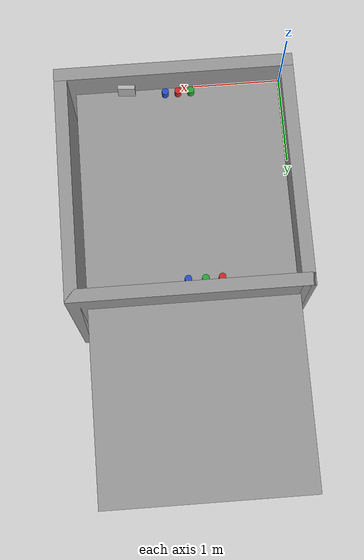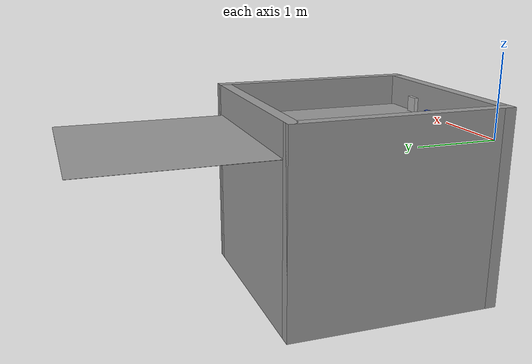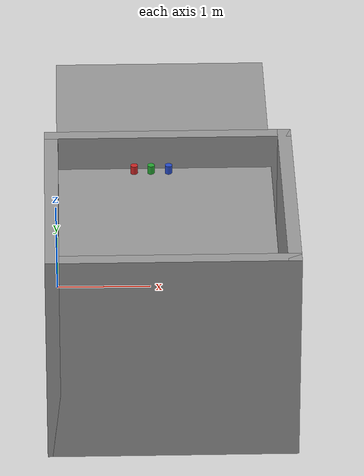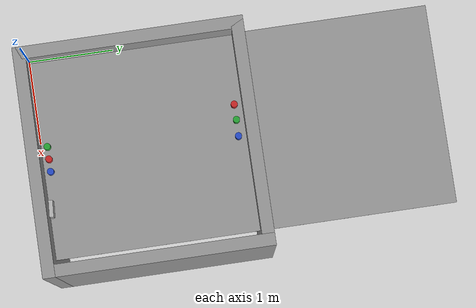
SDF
<sdf version="1.6">
 <world name="default">
  <light name="sun" type="directional">
   <pose>0 0 10 0 -0 0</pose>
   <diffuse>0.8 0.8 0.8 1</diffuse>
   <specular>0.2 0.2 0.2 1</specular>
   <attenuation>
    <range>1000</range>
    <constant>0.9</constant>
    <linear>0.01</linear>
    <quadratic>0.001</quadratic>
   </attenuation>
   <direction>-0.5 0.1 -0.9</direction>
  </light>
  <gravity>0 0 -9.8</gravity>
  <magnetic_field>6e-06 2.3e-05 -4.2e-05</magnetic_field>
  <atmosphere type="adiabatic"/>
  <physics name="default_physics" default="0" type="ode">
   <max_step_size>0.001</max_step_size>
   <real_time_factor>1</real_time_factor>
   <real_time_update_rate>1000</real_time_update_rate>
  </physics>
  <scene><ambient>0.4 0.4 0.4 1</ambient><background>0.7 0.7 0.7 1</background><shadows>1</shadows></scene>
  <audio><device>default</device></audio>
  <spherical_coordinates>
   <surface_model>EARTH_WGS84</surface_model>
   <latitude_deg>0</latitude_deg>
   <longitude_deg>0</longitude_deg>
   <elevation>0</elevation>
   <heading_deg>0</heading_deg>
  </spherical_coordinates>
  <model name="my_ground_plane">
   <pose>1.2 2.4 0 0 -0 0</pose>
   <static>1</static>
   <link name="link">
    <collision name="collision">
     <geometry><plane><normal>0 0 1</normal><size>2.4 4.8</size></plane></geometry>
     <surface><friction><ode><mu>100</mu><mu2>50</mu2></ode></friction></surface>
    </collision>
    <visual name="visual">
     <cast_shadows>0</cast_shadows>
     <geometry><plane><normal>0 0 1</normal><size>2.4 4.8</size></plane></geometry>
     <material>
      <script><uri>file://media/materials/scripts/gazebo.material</uri><name>Gazebo/Grey</name></script>
     </material>
    </visual>
   </link>
  </model>
  <model name="wall">
   <pose>1.24358 1.22026 -2.1 0 -0 0</pose>
   <link name="Wall_11">
    <collision name="Wall_11_Collision">
     <geometry><box><size>2.75 0.15 2.5</size></box></geometry>
     <pose>0 0 1.25 0 -0 0</pose>
    </collision>
    <visual name="Wall_11_Visual">
     <pose>0 0 1.25 0 -0 0</pose>
     <geometry><box><size>2.75 0.15 2.5</size></box></geometry>
     <material>
      <script><uri>file://media/materials/scripts/gazebo.material</uri><name>Gazebo/Grey</name></script>
      <ambient>1 1 1 1</ambient>
     </material>
     <meta><layer>0</layer></meta>
    </visual>
    <pose>0 1.3 0 0 -0 0</pose>
   </link>
   <link name="Wall_12">
    <collision name="Wall_12_Collision">
     <geometry><box><size>2.75 0.15 2.5</size></box></geometry>
     <pose>0 0 1.25 0 -0 0</pose>
    </collision>
    <visual name="Wall_12_Visual">
     <pose>0 0 1.25 0 -0 0</pose>
     <geometry><box><size>2.75 0.15 2.5</size></box></geometry>
     <material>
      <script><uri>file://media/materials/scripts/gazebo.material</uri><name>Gazebo/Grey</name></script>
      <ambient>1 1 1 1</ambient>
     </material>
     <meta><layer>0</layer></meta>
    </visual>
    <pose>1.3 0 0 0 -0 -1.5708</pose>
   </link>
   <link name="Wall_4">
    <collision name="Wall_4_Collision">
     <geometry><box><size>2.75 0.15 2.5</size></box></geometry>
     <pose>0 0 1.25 0 -0 0</pose>
    </collision>
    <visual name="Wall_4_Visual">
     <pose>0 0 1.25 0 -0 0</pose>
     <geometry><box><size>2.75 0.15 2.5</size></box></geometry>
     <material>
      <script><uri>file://media/materials/scripts/gazebo.material</uri><name>Gazebo/Grey</name></script>
      <ambient>1 1 1 1</ambient>
     </material>
     <meta><layer>0</layer></meta>
    </visual>
    <pose>0 -1.3 0 0 -0 3.14159</pose>
   </link>
   <link name="Wall_9">
    <collision name="Wall_9_Collision">
     <geometry><box><size>2.75 0.15 2.5</size></box></geometry>
     <pose>0 0 1.25 0 -0 0</pose>
    </collision>
    <visual name="Wall_9_Visual">
     <pose>0 0 1.25 0 -0 0</pose>
     <geometry><box><size>2.75 0.15 2.5</size></box></geometry>
     <material>
      <script><uri>file://media/materials/scripts/gazebo.material</uri><name>Gazebo/Grey</name></script>
      <ambient>1 1 1 1</ambient>
     </material>
     <meta><layer>0</layer></meta>
    </visual>
    <pose>-1.3 0 0 0 -0 1.5708</pose>
   </link>
   <static>1</static>
  </model>
  <model name="textured_shapes">
   <pose>1.8 0.035347 0.1 -1.36873 1.57079 -3.00299</pose>
   <link name="box">
    <collision name="collision"><geometry><box><size>0.2 0.2 0.05</size></box></geometry></collision>
    <visual name="visual">
     <geometry><box><size>0.2 0.2 0.05</size></box></geometry>
     <material>
      <script>
       <uri>model://textured_shapes/materials/scripts</uri>
       <uri>model://textured_shapes/materials/textures</uri>
       <name>TexturedShape/Squares</name>
      </script>
     </material>
    </visual>
    <inertial>
     <inertia><ixx>1</ixx><ixy>0</ixy><ixz>0</ixz><iyy>1</iyy><iyz>0</iyz><izz>1</izz></inertia>
     <mass>1</mass>
    </inertial>
   </link>
  </model>
  <model name="BlueButton">
   <link name="link_0">
    <inertial>
     <mass>1</mass>
     <inertia><ixx>0.145833</ixx><ixy>0</ixy><ixz>0</ixz><iyy>0.145833</iyy><iyz>0</iyz><izz>0.125</izz></inertia>
    </inertial>
    <visual name="visual">
     <geometry><cylinder><radius>0.04</radius><length>0.1</length></cylinder></geometry>
     <material>
      <lighting>1</lighting>
      <script><uri>file://media/materials/scripts/gazebo.material</uri><name>Gazebo/Blue</name></script>
      <shader type="vertex"><normal_map>__default__</normal_map></shader>
      <ambient>0 0 1 1</ambient>
      <diffuse>0 0 1 1</diffuse>
      <specular>0.1 0.1 0.1 1</specular>
      <emissive>0 0 0 1</emissive>
     </material>
    </visual>
    <collision name="collision">
     <geometry><cylinder><radius>0.04</radius><length>0.1</length></cylinder></geometry>
     <surface>
      <friction>
       <ode><mu>1</mu><mu2>1</mu2><fdir1>0 0 0</fdir1><slip1>0</slip1><slip2>0</slip2></ode>
       <torsional>
        <coefficient>1</coefficient>
        <patch_radius>0</patch_radius>
        <surface_radius>0</surface_radius>
        <use_patch_radius>1</use_patch_radius>
        <ode><slip>0</slip></ode>
       </torsional>
      </friction>
      <bounce><restitution_coefficient>0</restitution_coefficient><threshold>1e+06</threshold></bounce>
      <contact>
       <collide_without_contact>0</collide_without_contact>
       <collide_without_contact_bitmask>1</collide_without_contact_bitmask>
       <collide_bitmask>1</collide_bitmask>
       <ode>
        <soft_cfm>0</soft_cfm>
        <soft_erp>0.2</soft_erp>
        <kp>1e+13</kp>
        <kd>1</kd>
        <max_vel>0.01</max_vel>
        <min_depth>0</min_depth>
       </ode>
       <bullet>
        <split_impulse>1</split_impulse>
        <split_impulse_penetration_threshold>-0.01</split_impulse_penetration_threshold>
        <soft_cfm>0</soft_cfm>
        <soft_erp>0.2</soft_erp>
        <kp>1e+13</kp>
        <kd>1</kd>
       </bullet>
      </contact>
     </surface>
    </collision>
   </link>
   <static>0</static>
   <pose>1.25067 2.34834 0.049995 0 -0 5e-06</pose>
  </model>
  <model name="GreenButton">
   <link name="link_0">
    <inertial>
     <mass>1</mass>
     <inertia><ixx>0.145833</ixx><ixy>0</ixy><ixz>0</ixz><iyy>0.145833</iyy><iyz>0</iyz><izz>0.125</izz></inertia>
    </inertial>
    <visual name="visual">
     <geometry><cylinder><radius>0.04</radius><length>0.1</length></cylinder></geometry>
     <material>
      <lighting>1</lighting>
      <script><uri>file://media/materials/scripts/gazebo.material</uri><name>Gazebo/Green</name></script>
      <shader type="vertex"><normal_map>__default__</normal_map></shader>
      <ambient>0 1 0 1</ambient>
      <diffuse>0 1 0 1</diffuse>
      <specular>0.1 0.1 0.1 1</specular>
      <emissive>0 0 0 1</emissive>
     </material>
    </visual>
    <collision name="collision">
     <geometry><cylinder><radius>0.04</radius><length>0.1</length></cylinder></geometry>
     <surface>
      <friction>
       <ode><mu>1</mu><mu2>1</mu2><fdir1>0 0 0</fdir1><slip1>0</slip1><slip2>0</slip2></ode>
       <torsional>
        <coefficient>1</coefficient>
        <patch_radius>0</patch_radius>
        <surface_radius>0</surface_radius>
        <use_patch_radius>1</use_patch_radius>
        <ode><slip>0</slip></ode>
       </torsional>
      </friction>
      <bounce><restitution_coefficient>0</restitution_coefficient><threshold>1e+06</threshold></bounce>
      <contact>
       <collide_without_contact>0</collide_without_contact>
       <collide_without_contact_bitmask>1</collide_without_contact_bitmask>
       <collide_bitmask>1</collide_bitmask>
       <ode>
        <soft_cfm>0</soft_cfm>
        <soft_erp>0.2</soft_erp>
        <kp>1e+13</kp>
        <kd>1</kd>
        <max_vel>0.01</max_vel>
        <min_depth>0</min_depth>
       </ode>
       <bullet>
        <split_impulse>1</split_impulse>
        <split_impulse_penetration_threshold>-0.01</split_impulse_penetration_threshold>
        <soft_cfm>0</soft_cfm>
        <soft_erp>0.2</soft_erp>
        <kp>1e+13</kp>
        <kd>1</kd>
       </bullet>
      </contact>
     </surface>
    </collision>
   </link>
   <static>0</static>
   <pose>1.05463 2.35249 0.049996 -1e-06 -1e-06 4e-06</pose>
  </model>
  <model name="RedButton">
   <link name="link_1">
    <inertial>
     <mass>1</mass>
     <inertia><ixx>0.145833</ixx><ixy>0</ixy><ixz>0</ixz><iyy>0.145833</iyy><iyz>0</iyz><izz>0.125</izz></inertia>
    </inertial>
    <visual name="visual">
     <geometry><cylinder><radius>0.04</radius><length>0.1</length></cylinder></geometry>
     <material>
      <lighting>1</lighting>
      <script><uri>file://media/materials/scripts/gazebo.material</uri><name>Gazebo/Red</name></script>
      <shader type="vertex"><normal_map>__default__</normal_map></shader>
      <ambient>1 0 0 1</ambient>
      <diffuse>1 0 0 1</diffuse>
      <specular>0.1 0.1 0.1 1</specular>
      <emissive>0 0 0 1</emissive>
     </material>
    </visual>
    <collision name="collision">
     <geometry><cylinder><radius>0.04</radius><length>0.1</length></cylinder></geometry>
     <surface>
      <friction>
       <ode><mu>1</mu><mu2>1</mu2><fdir1>0 0 0</fdir1><slip1>0</slip1><slip2>0</slip2></ode>
       <torsional>
        <coefficient>1</coefficient>
        <patch_radius>0</patch_radius>
        <surface_radius>0</surface_radius>
        <use_patch_radius>1</use_patch_radius>
        <ode><slip>0</slip></ode>
       </torsional>
      </friction>
      <bounce><restitution_coefficient>0</restitution_coefficient><threshold>1e+06</threshold></bounce>
      <contact>
       <collide_without_contact>0</collide_without_contact>
       <collide_without_contact_bitmask>1</collide_without_contact_bitmask>
       <collide_bitmask>1</collide_bitmask>
       <ode>
        <soft_cfm>0</soft_cfm>
        <soft_erp>0.2</soft_erp>
        <kp>1e+13</kp>
        <kd>1</kd>
        <max_vel>0.01</max_vel>
        <min_depth>0</min_depth>
       </ode>
       <bullet>
        <split_impulse>1</split_impulse>
        <split_impulse_penetration_threshold>-0.01</split_impulse_penetration_threshold>
        <soft_cfm>0</soft_cfm>
        <soft_erp>0.2</soft_erp>
        <kp>1e+13</kp>
        <kd>1</kd>
       </bullet>
      </contact>
     </surface>
    </collision>
   </link>
   <static>0</static>
   <pose>0.867512 2.35193 0.049994 -1e-06 -0 1.6e-05</pose>
  </model>
  <model name="BlueButton_0">
   <link name="link_0">
    <inertial>
     <mass>1</mass>
     <inertia><ixx>0.145833</ixx><ixy>0</ixy><ixz>0</ixz><iyy>0.145833</iyy><iyz>0</iyz><izz>0.125</izz></inertia>
    </inertial>
    <visual name="visual">
     <geometry><cylinder><radius>0.04</radius><length>0.1</length></cylinder></geometry>
     <material>
      <lighting>1</lighting>
      <script><uri>file://media/materials/scripts/gazebo.material</uri><name>Gazebo/Blue</name></script>
      <shader type="vertex"><normal_map>__default__</normal_map></shader>
      <ambient>0 0 1 1</ambient>
      <diffuse>0 0 1 1</diffuse>
      <specular>0.1 0.1 0.1 1</specular>
      <emissive>0 0 0 1</emissive>
     </material>
    </visual>
    <collision name="collision">
     <geometry><cylinder><radius>0.04</radius><length>0.1</length></cylinder></geometry>
     <surface>
      <friction>
       <ode><mu>1</mu><mu2>1</mu2><fdir1>0 0 0</fdir1><slip1>0</slip1><slip2>0</slip2></ode>
       <torsional>
        <coefficient>1</coefficient>
        <patch_radius>0</patch_radius>
        <surface_radius>0</surface_radius>
        <use_patch_radius>1</use_patch_radius>
        <ode><slip>0</slip></ode>
       </torsional>
      </friction>
      <bounce><restitution_coefficient>0</restitution_coefficient><threshold>1e+06</threshold></bounce>
      <contact>
       <collide_without_contact>0</collide_without_contact>
       <collide_without_contact_bitmask>1</collide_without_contact_bitmask>
       <collide_bitmask>1</collide_bitmask>
       <ode>
        <soft_cfm>0</soft_cfm>
        <soft_erp>0.2</soft_erp>
        <kp>1e+13</kp>
        <kd>1</kd>
        <max_vel>0.01</max_vel>
        <min_depth>0</min_depth>
       </ode>
       <bullet>
        <split_impulse>1</split_impulse>
        <split_impulse_penetration_threshold>-0.01</split_impulse_penetration_threshold>
        <soft_cfm>0</soft_cfm>
        <soft_erp>0.2</soft_erp>
        <kp>1e+13</kp>
        <kd>1</kd>
       </bullet>
      </contact>
     </surface>
    </collision>
   </link>
   <static>0</static>
   <pose>1.35 0.08 0.049995 1e-06 -1e-06 2e-05</pose>
  </model>
  <model name="GreenButton_0">
   <link name="link_0">
    <inertial>
     <mass>1</mass>
     <inertia><ixx>0.145833</ixx><ixy>0</ixy><ixz>0</ixz><iyy>0.145833</iyy><iyz>0</iyz><izz>0.125</izz></inertia>
    </inertial>
    <visual name="visual">
     <geometry><cylinder><radius>0.04</radius><length>0.1</length></cylinder></geometry>
     <material>
      <lighting>1</lighting>
      <script><uri>file://media/materials/scripts/gazebo.material</uri><name>Gazebo/Green</name></script>
      <shader type="vertex"><normal_map>__default__</normal_map></shader>
      <ambient>0 1 0 1</ambient>
      <diffuse>0 1 0 1</diffuse>
      <specular>0.1 0.1 0.1 1</specular>
      <emissive>0 0 0 1</emissive>
     </material>
    </visual>
    <collision name="collision">
     <geometry><cylinder><radius>0.04</radius><length>0.1</length></cylinder></geometry>
     <surface>
      <friction>
       <ode><mu>1</mu><mu2>1</mu2><fdir1>0 0 0</fdir1><slip1>0</slip1><slip2>0</slip2></ode>
       <torsional>
        <coefficient>1</coefficient>
        <patch_radius>0</patch_radius>
        <surface_radius>0</surface_radius>
        <use_patch_radius>1</use_patch_radius>
        <ode><slip>0</slip></ode>
       </torsional>
      </friction>
      <bounce><restitution_coefficient>0</restitution_coefficient><threshold>1e+06</threshold></bounce>
      <contact>
       <collide_without_contact>0</collide_without_contact>
       <collide_without_contact_bitmask>1</collide_without_contact_bitmask>
       <collide_bitmask>1</collide_bitmask>
       <ode>
        <soft_cfm>0</soft_cfm>
        <soft_erp>0.2</soft_erp>
        <kp>1e+13</kp>
        <kd>1</kd>
        <max_vel>0.01</max_vel>
        <min_depth>0</min_depth>
       </ode>
       <bullet>
        <split_impulse>1</split_impulse>
        <split_impulse_penetration_threshold>-0.01</split_impulse_penetration_threshold>
        <soft_cfm>0</soft_cfm>
        <soft_erp>0.2</soft_erp>
        <kp>1e+13</kp>
        <kd>1</kd>
       </bullet>
      </contact>
     </surface>
    </collision>
   </link>
   <static>0</static>
   <pose>1.05 0.08 0.049993 0 -0 1.2e-05</pose>
  </model>
  <model name="RedButton_0">
   <link name="link_1">
    <inertial>
     <mass>1</mass>
     <inertia><ixx>0.145833</ixx><ixy>0</ixy><ixz>0</ixz><iyy>0.145833</iyy><iyz>0</iyz><izz>0.125</izz></inertia>
    </inertial>
    <visual name="visual">
     <geometry><cylinder><radius>0.04</radius><length>0.1</length></cylinder></geometry>
     <material>
      <lighting>1</lighting>
      <script><uri>file://media/materials/scripts/gazebo.material</uri><name>Gazebo/Red</name></script>
      <shader type="vertex"><normal_map>__default__</normal_map></shader>
      <ambient>1 0 0 1</ambient>
      <diffuse>1 0 0 1</diffuse>
      <specular>0.1 0.1 0.1 1</specular>
      <emissive>0 0 0 1</emissive>
     </material>
    </visual>
    <collision name="collision">
     <geometry><cylinder><radius>0.04</radius><length>0.1</length></cylinder></geometry>
     <surface>
      <friction>
       <ode><mu>1</mu><mu2>1</mu2><fdir1>0 0 0</fdir1><slip1>0</slip1><slip2>0</slip2></ode>
       <torsional>
        <coefficient>1</coefficient>
        <patch_radius>0</patch_radius>
        <surface_radius>0</surface_radius>
        <use_patch_radius>1</use_patch_radius>
        <ode><slip>0</slip></ode>
       </torsional>
      </friction>
      <bounce><restitution_coefficient>0</restitution_coefficient><threshold>1e+06</threshold></bounce>
      <contact>
       <collide_without_contact>0</collide_without_contact>
       <collide_without_contact_bitmask>1</collide_without_contact_bitmask>
       <collide_bitmask>1</collide_bitmask>
       <ode>
        <soft_cfm>0</soft_cfm>
        <soft_erp>0.2</soft_erp>
        <kp>1e+13</kp>
        <kd>1</kd>
        <max_vel>0.01</max_vel>
        <min_depth>0</min_depth>
       </ode>
       <bullet>
        <split_impulse>1</split_impulse>
        <split_impulse_penetration_threshold>-0.01</split_impulse_penetration_threshold>
        <soft_cfm>0</soft_cfm>
        <soft_erp>0.2</soft_erp>
        <kp>1e+13</kp>
        <kd>1</kd>
       </bullet>
      </contact>
     </surface>
    </collision>
   </link>
   <static>0</static>
   <pose>1.2 0.08 0.049995 0 -0 1e-06</pose>
  </model>
 </world>
</sdf>
